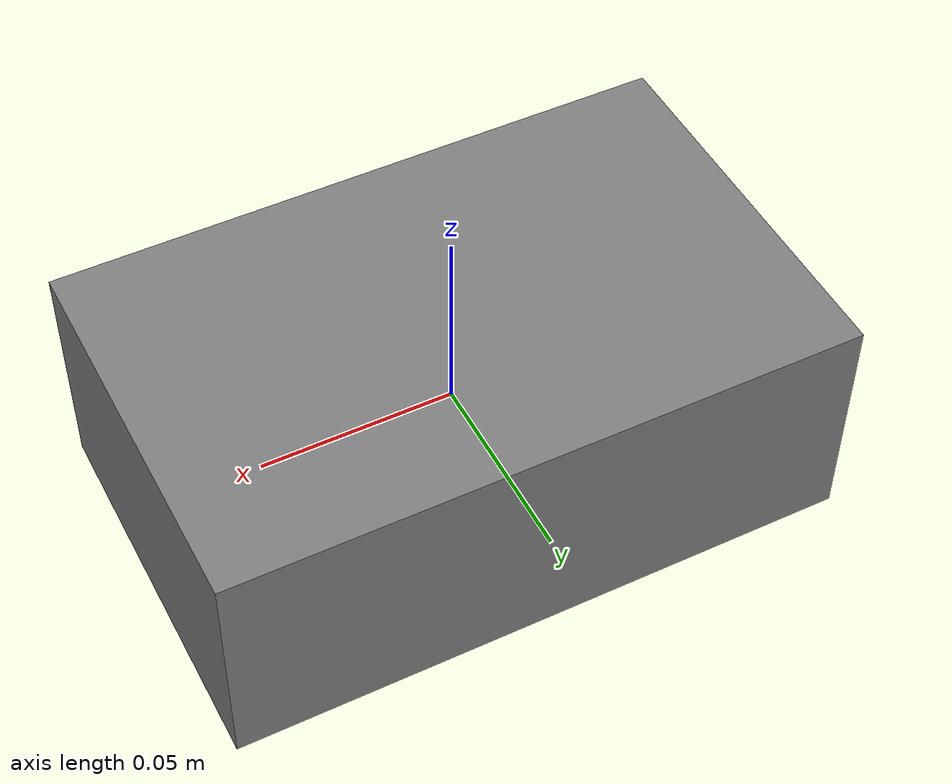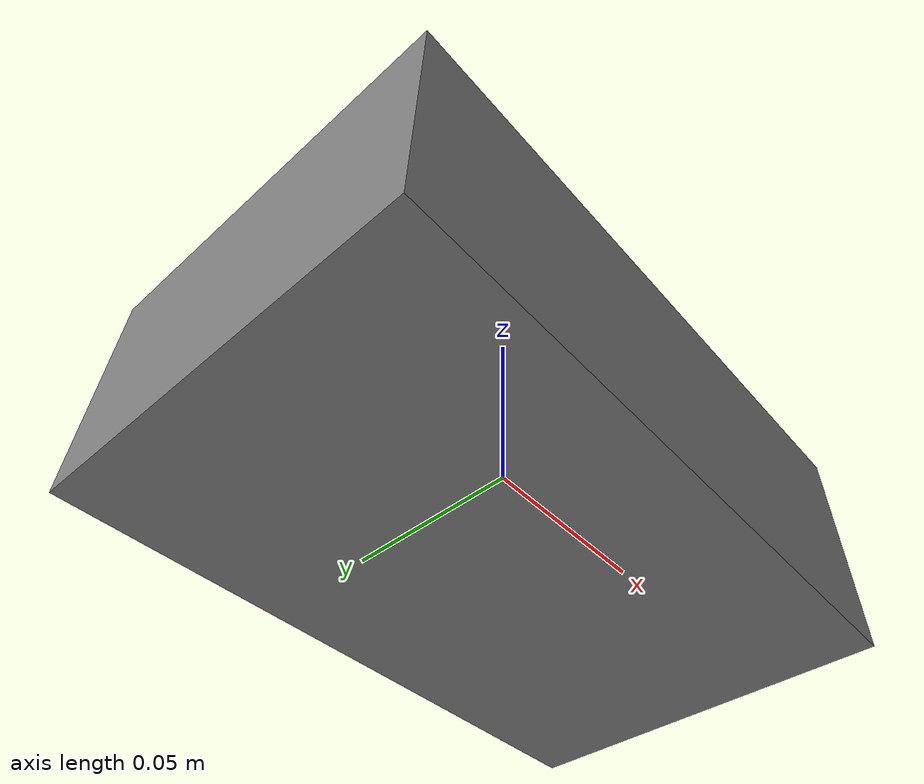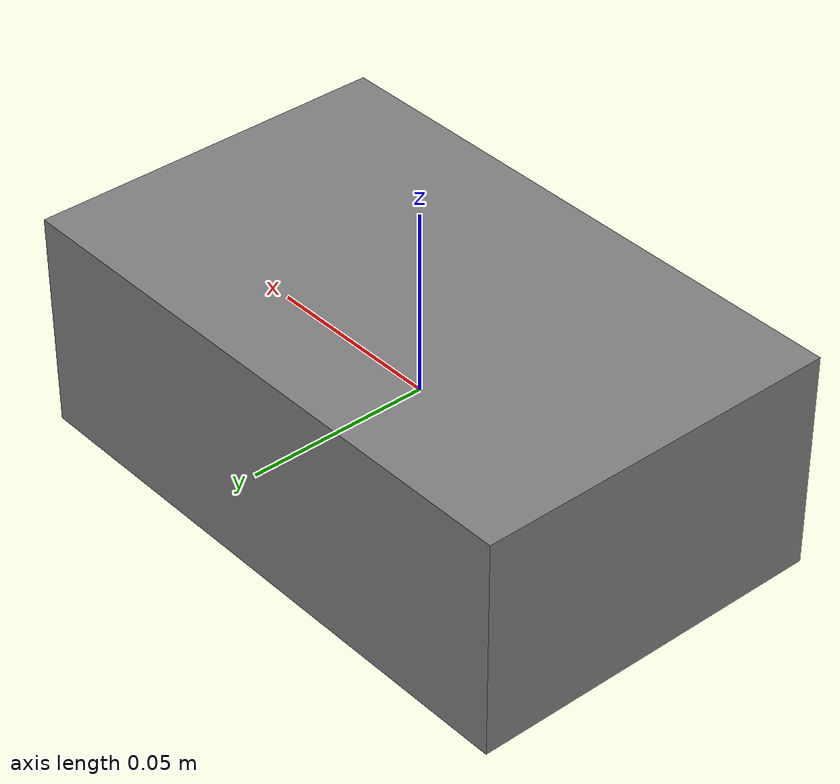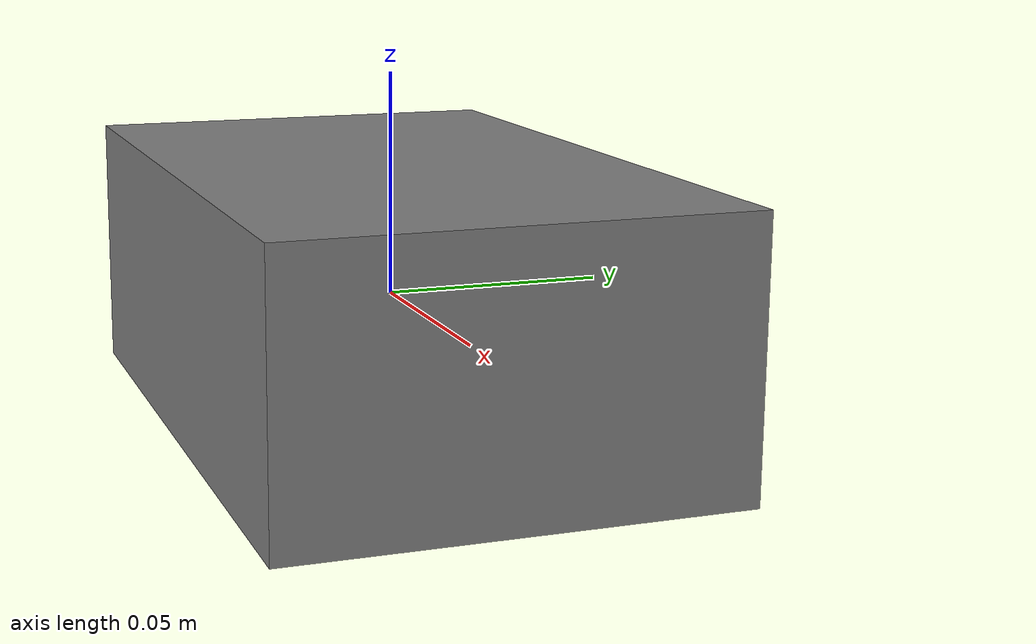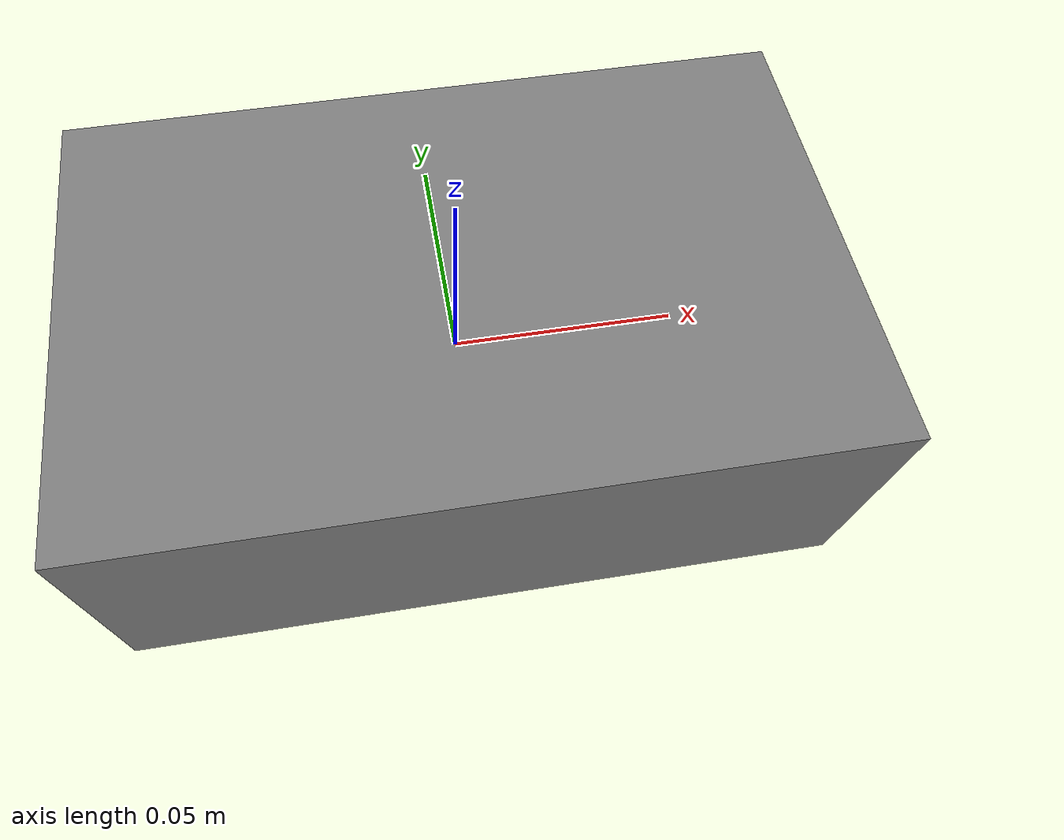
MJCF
<mujoco model="feed-stage">
  <worldbody>
    <body name="carriage" pos="0 0 0">
      <joint name="feed" type="slide" axis="1 0 0" damping="8.0"/>
      <geom name="block" type="box" size="0.08 0.05 0.03" mass="1.0"/>
    </body>
  </worldbody>
  <actuator>
    <motor name="drive" joint="feed" gear="0.01"/>
  </actuator>
</mujoco>
